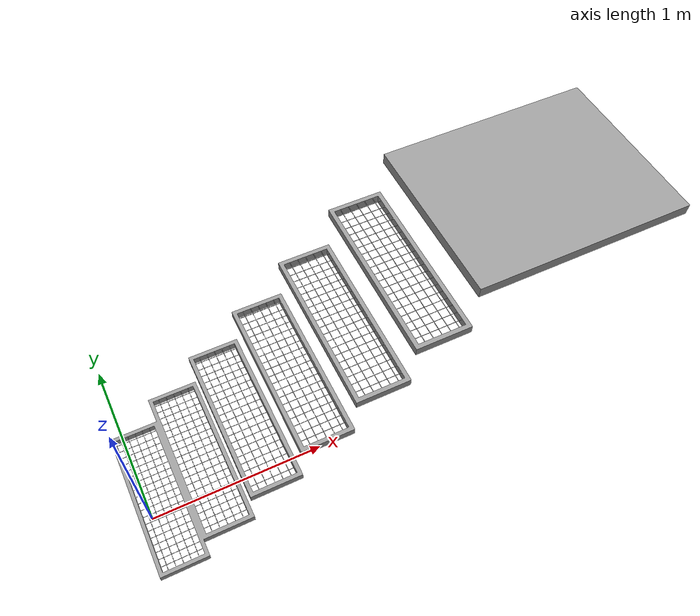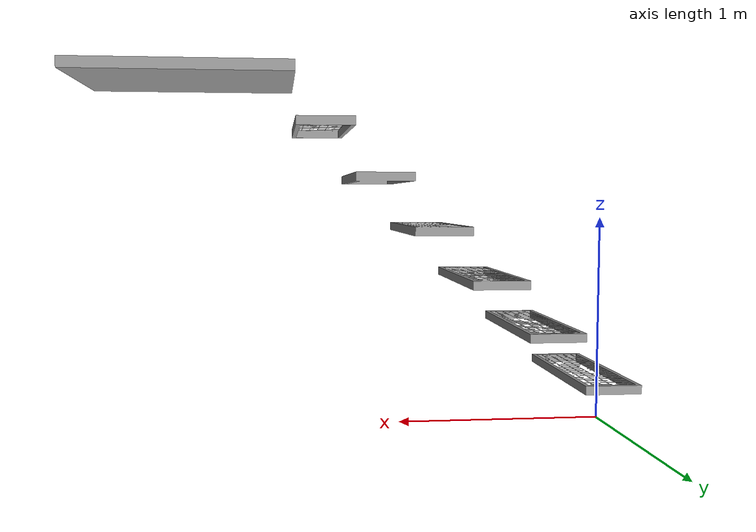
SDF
<?xml version='1.0'?>
<sdf version='1.6'>
  <model name='industrial_stairs_grating_treads'>
    <static>true</static>
        <link name='link_0'>
          <pose>0 0 0 0 -0 0</pose>
          <visual name='visual'>
            <geometry>
              <mesh>
                <uri>model://gazebo_worlds/meshes/industrial_stairs_grating_treads.dae</uri>
                <scale>1 1 1</scale>
              </mesh>
            </geometry>
            <material>
              <lighting>1</lighting>
              <script>
                <uri>file://media/materials/scripts/gazebo.material</uri>
                <name>Gazebo/Grey</name>
              </script>
              <shader type='pixel'/>
              <ambient>0.3 0.3 0.3 1</ambient>
              <diffuse>0.7 0.7 0.7 1</diffuse>
              <specular>0.01 0.01 0.01 1</specular>
              <emissive>0 0 0 1</emissive>
            </material>
            <transparency>0</transparency>
            <cast_shadows>1</cast_shadows>
          </visual>
          <collision name='collision'>
            <geometry>
              <mesh>
                <uri>model://gazebo_worlds/meshes/industrial_stairs_grating_treads.dae</uri>
                <scale>1 1 1</scale>
              </mesh>
            </geometry>
          </collision>
        </link>
  </model>
</sdf>
